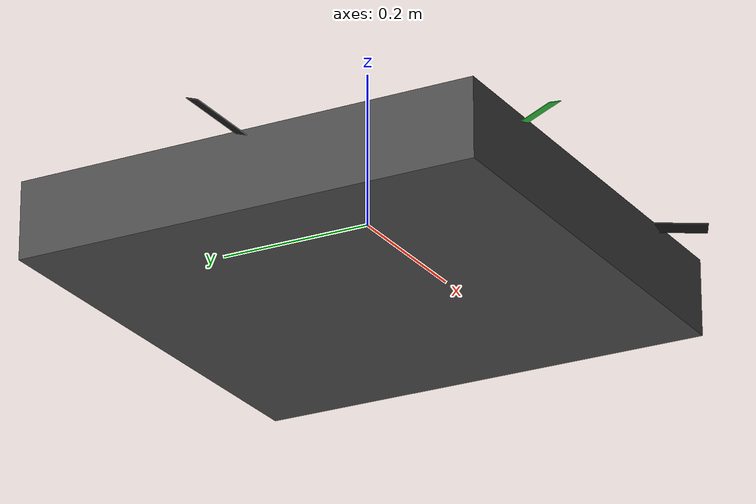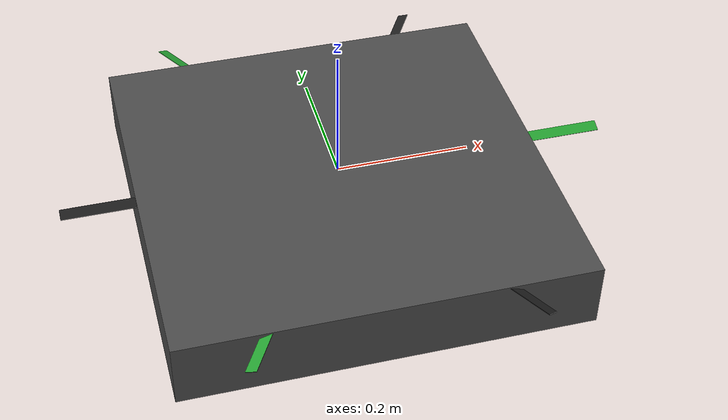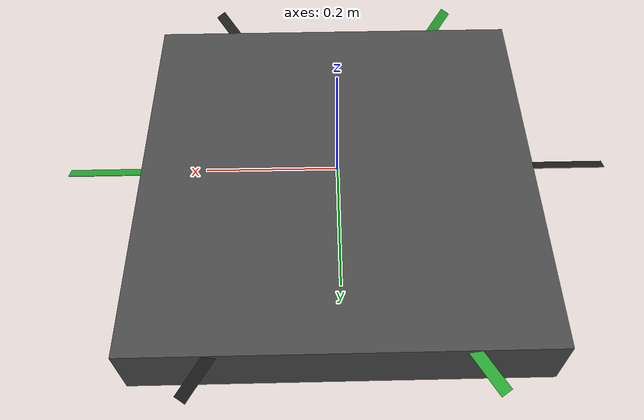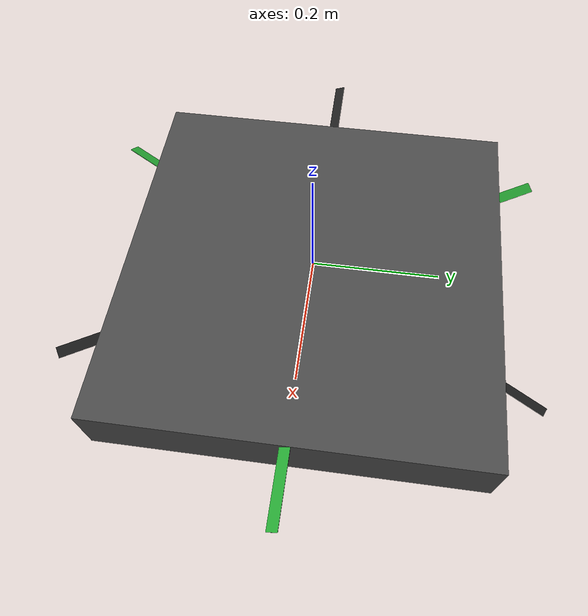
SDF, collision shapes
<?xml version="1.0" encoding="UTF-8"?>
<sdf version='1.9'>
  <model name='fah_hexa'>
    <pose>0 0 0 0 0 0</pose>
    <self_collide>false</self_collide>
    <static>false</static>
    <link name="base_link">
      <inertial>
        <mass>2.2</mass>
        <inertia>
          <ixx>0.0411</ixx>
          <ixy>0</ixy>
          <ixz>0</ixz>
          <iyy>0.0478</iyy>
          <iyz>0</iyz>
          <izz>0.0599</izz>
        </inertia>
      </inertial>
      <gravity>true</gravity>
      <velocity_decay/>

      <!-- Mock visuals for now -->
      <visual name="base_link_visual">
        <pose>0 0 -0.05 0 0 0</pose>
        <geometry>
          <mesh>
            <scale>0.1 0.1 0.1</scale>
            <uri>model://fah_hexa/meshes/hexa_decimated.stl</uri>
          </mesh>
        </geometry>
	<material>
	  <script>
	    <name>Gazebo/DarkGrey</name>
	    <uri>file://media/materials/scripts/gazebo.material</uri>
	  </script>
	</material>
      </visual>

      <collision name="base_link_collision_0">
        <pose>0 0 -.045 0 0 0</pose>
        <geometry>
          <box>
            <size>0.6 0.6 0.1</size>
          </box>
        </geometry>
        <surface>
          <contact>
            <ode>
              <min_depth>0.001</min_depth>
              <max_vel>0</max_vel>
            </ode>
          </contact>
          <friction>
            <ode/>
          </friction>
        </surface>
      </collision>

      <sensor name="air_pressure_sensor" type="air_pressure">
        <always_on>1</always_on>
        <update_rate>50</update_rate>
        <air_pressure>
          <pressure>
            <noise type="gaussian">
              <mean>0</mean>
              <stddev>0.01</stddev>
            </noise>
          </pressure>
        </air_pressure>
      </sensor>
      <sensor name="imu_sensor" type="imu">
        <always_on>1</always_on>
        <update_rate>250</update_rate>
        <imu>
          <angular_velocity>
            <x>
              <noise type="gaussian">
                <mean>0</mean>
                <stddev>0.00018665</stddev>
                <dynamic_bias_stddev>3.8785e-05</dynamic_bias_stddev>
                <dynamic_bias_correlation_time>1000</dynamic_bias_correlation_time>
              </noise>
            </x>
            <y>
              <noise type="gaussian">
                <mean>0</mean>
                <stddev>0.00018665</stddev>
                <dynamic_bias_stddev>3.8785e-05</dynamic_bias_stddev>
                <dynamic_bias_correlation_time>1000</dynamic_bias_correlation_time>
              </noise>
            </y>
            <z>
              <noise type="gaussian">
                <mean>0</mean>
                <stddev>0.00018665</stddev>
                <dynamic_bias_stddev>3.8785e-05</dynamic_bias_stddev>
                <dynamic_bias_correlation_time>1000</dynamic_bias_correlation_time>
              </noise>
            </z>
          </angular_velocity>
          <linear_acceleration>
            <x>
              <noise type="gaussian">
                <mean>0</mean>
                <stddev>0.00186</stddev>
                <dynamic_bias_stddev>0.006</dynamic_bias_stddev>
                <dynamic_bias_correlation_time>300</dynamic_bias_correlation_time>
              </noise>
            </x>
            <y>
              <noise type="gaussian">
                <mean>0</mean>
                <stddev>0.00186</stddev>
                <dynamic_bias_stddev>0.006</dynamic_bias_stddev>
                <dynamic_bias_correlation_time>300</dynamic_bias_correlation_time>
              </noise>
            </y>
            <z>
              <noise type="gaussian">
                <mean>0</mean>
                <stddev>0.00186</stddev>
                <dynamic_bias_stddev>0.006</dynamic_bias_stddev>
                <dynamic_bias_correlation_time>300</dynamic_bias_correlation_time>
              </noise>
            </z>
          </linear_acceleration>
        </imu>
      </sensor>
      <sensor name="navsat_sensor" type="navsat">
        <always_on>1</always_on>
        <update_rate>30</update_rate>
      </sensor>
    </link>

    <link name="rotor_0">
      <gravity>true</gravity>
      <self_collide>false</self_collide>
      <velocity_decay/>
      <pose rotation_format="quat_xyzw">0.27 0 0 0.1736482 0 0 0.9848078</pose>
      <inertial>
	  <!-- unchanged masses for lack of better data -->
          <mass>0.016076923076923075</mass>
          <inertia>
            <ixx>3.8464910483993325e-07</ixx>
            <iyy>2.6115851691700804e-05</iyy>
            <izz>2.649858234714004e-05</izz>
          </inertia>
        </inertial>
      <visual name="rotor_0_visual">
        <pose>-0.022 -0.14638461538461536 -0.016 0 0 0</pose>
        <geometry>
          <mesh>
            <scale>0.8461538461538461 0.8461538461538461 0.8461538461538461</scale>
            <uri>model://fah_hexa/meshes/1345_prop_ccw.stl</uri>
          </mesh>
        </geometry>
        <material>
          <script>
            <name>Gazebo/Green</name>
            <uri>file://media/materials/scripts/gazebo.material</uri>
          </script>
        </material>
      </visual>
      <visual name="rotor_0_visual_motor_bell">
        <pose>0 0 -.032 0 0 0</pose>
        <geometry>
          <mesh>
            <scale>0.75 0.75 0.75</scale>
            <uri>model://fah_hexa/meshes/5010Bell.dae</uri>
          </mesh>
        </geometry>
      </visual>
      <collision name="rotor_0_collision">
        <pose>0 0 0 0 0 0 </pose>
        <geometry>
          <box>
            <size>0.2792307692307692 0.016923076923076923 0.0008461538461538462</size>
          </box>
        </geometry>
        <surface>
          <contact>
            <ode>
              <min_depth>0.001</min_depth>
              <max_vel>0</max_vel>
            </ode>
          </contact>
          <friction>
            <ode/>
          </friction>
        </surface>
      </collision>
    </link>
    <joint name="rotor_0_joint" type="revolute">
      <parent>base_link</parent>
      <child>rotor_0</child>
      <axis>
        <xyz>0 0 1</xyz>
        <limit>
          <lower>-1e+16</lower>
          <upper>1e+16</upper>
        </limit>
        <dynamics>
          <spring_reference>0</spring_reference>
          <spring_stiffness>0</spring_stiffness>
        </dynamics>
      </axis>
    </joint>

    <link name="rotor_1">
      <gravity>true</gravity>
      <self_collide>false</self_collide>
      <velocity_decay/>
      <pose rotation_format="quat_xyzw">0.135 0.2338 0 -0.15038375186428 -0.0868241 0.4924039 0.8528685689181199</pose>
      <inertial>
          <mass>0.016076923076923075</mass>
          <inertia>
            <ixx>3.8464910483993325e-07</ixx>
            <iyy>2.6115851691700804e-05</iyy>
            <izz>2.649858234714004e-05</izz>
          </inertia>
        </inertial>
      <visual name="rotor_1_visual">
        <pose>-0.022 -0.14638461538461536 -0.016 0 0 0</pose>
        <geometry>
          <mesh>
            <scale>0.8461538461538461 0.8461538461538461 0.8461538461538461</scale>
            <uri>model://fah_hexa/meshes/1345_prop_cw.stl</uri>
          </mesh>
        </geometry>
        <material>
          <script>
            <name>Gazebo/Black</name>
            <uri>file://media/materials/scripts/gazebo.material</uri>
          </script>
        </material>
      </visual>
      <visual name="rotor_1_visual_motor_top">
        <pose>0 0 -.032 0 0 0</pose>
        <geometry>
          <mesh>
            <scale>1 1 1</scale>
            <uri>model://fah_hexa/meshes/5010Bell.dae</uri>
          </mesh>
        </geometry>
      </visual>
      <collision name="rotor_1_collision">
        <pose>0 0 0 0 0 0 </pose>
        <geometry>
          <box>
            <size>0.2792307692307692 0.016923076923076923 0.0008461538461538462</size>
          </box>
        </geometry>
        <surface>
          <contact>
            <ode>
              <min_depth>0.001</min_depth>
              <max_vel>0</max_vel>
            </ode>
          </contact>
          <friction>
            <ode/>
          </friction>
        </surface>
      </collision>
    </link>
    <joint name="rotor_1_joint" type="revolute">
      <parent>base_link</parent>
      <child>rotor_1</child>
      <axis>
        <xyz>0 0 1</xyz>
        <limit>
          <lower>-1e+16</lower>
          <upper>1e+16</upper>
        </limit>
        <dynamics>
          <spring_reference>0</spring_reference>
          <spring_stiffness>0</spring_stiffness>
        </dynamics>
      </axis>
    </joint>

    <link name="rotor_2">
      <gravity>true</gravity>
      <self_collide>false</self_collide>
      <velocity_decay/>
      <pose rotation_format="quat_xyzw">-0.135 0.2338 0 0.08682409886176382, 0.15038375186428, 0.8528685689181199, 0.49240389354474234</pose>
      <inertial>
          <mass>0.016076923076923075</mass>
          <inertia>
            <ixx>3.8464910483993325e-07</ixx>
            <iyy>2.6115851691700804e-05</iyy>
            <izz>2.649858234714004e-05</izz>
          </inertia>
        </inertial>
      <visual name="rotor_2_visual">
        <pose>-0.022 -0.14638461538461536 -0.016 0 0 0</pose>
        <geometry>
          <mesh>
            <scale>0.8461538461538461 0.8461538461538461 0.8461538461538461</scale>
            <uri>model://fah_hexa/meshes/1345_prop_ccw.stl</uri>
          </mesh>
        </geometry>
        <material>
          <script>
            <name>Gazebo/Green</name>
            <uri>file://media/materials/scripts/gazebo.material</uri>
          </script>
        </material>
      </visual>
      <visual name="rotor_2_visual_motor_top">
        <pose>0 0 -.032 0 0 0</pose>
        <geometry>
          <mesh>
            <scale>1 1 1</scale>
            <uri>model://fah_hexa/meshes/5010Bell.dae</uri>
          </mesh>
        </geometry>
      </visual>
      <collision name="rotor_2_collision">
        <pose>0 0 0 0 0 0 </pose>
        <geometry>
          <box>
            <size>0.2792307692307692 0.016923076923076923 0.0008461538461538462</size>
          </box>
        </geometry>
        <surface>
          <contact>
            <ode>
              <min_depth>0.001</min_depth>
              <max_vel>0</max_vel>
            </ode>
          </contact>
          <friction>
            <ode/>
          </friction>
        </surface>
      </collision>
    </link>
    <joint name="rotor_2_joint" type="revolute">
      <parent>base_link</parent>
      <child>rotor_2</child>
      <axis>
        <xyz>0 0 1</xyz>
        <limit>
          <lower>-1e+16</lower>
          <upper>1e+16</upper>
        </limit>
        <dynamics>
          <spring_reference>0</spring_reference>
          <spring_stiffness>0</spring_stiffness>
        </dynamics>
      </axis>
    </joint>

    <link name="rotor_3">
      <gravity>true</gravity>
      <self_collide>false</self_collide>
      <velocity_decay/>
      <pose rotation_format="quat_xyzw">-0.27 0 0 0 -0.1736482 0.9848078 0</pose>
      <inertial>
          <mass>0.016076923076923075</mass>
          <inertia>
            <ixx>3.8464910483993325e-07</ixx>
            <iyy>2.6115851691700804e-05</iyy>
            <izz>2.649858234714004e-05</izz>
          </inertia>
        </inertial>
      <visual name="rotor_3_visual">
        <pose>-0.022 -0.14638461538461536 -0.016 0 0 0</pose>
        <geometry>
          <mesh>
            <scale>0.8461538461538461 0.8461538461538461 0.8461538461538461</scale>
            <uri>model://fah_hexa/meshes/1345_prop_cw.stl</uri>
          </mesh>
        </geometry>
        <material>
          <script>
            <name>Gazebo/Black</name>
            <uri>file://media/materials/scripts/gazebo.material</uri>
          </script>
        </material>
      </visual>
      <visual name="rotor_3_visual_motor_top">
        <pose>0 0 -.032 0 0 0</pose>
        <geometry>
          <mesh>
            <scale>1 1 1</scale>
            <uri>model://fah_hexa/meshes/5010Bell.dae</uri>
          </mesh>
        </geometry>
      </visual>
      <collision name="rotor_3_collision">
        <pose>0 0 0 0 0 0 </pose>
        <geometry>
          <box>
            <size>0.2792307692307692 0.016923076923076923 0.0008461538461538462</size>
          </box>
        </geometry>
        <surface>
          <contact>
            <ode>
              <min_depth>0.001</min_depth>
              <max_vel>0</max_vel>
            </ode>
          </contact>
          <friction>
            <ode/>
          </friction>
        </surface>
      </collision>
    </link>
    <joint name="rotor_3_joint" type="revolute">
      <parent>base_link</parent>
      <child>rotor_3</child>
      <axis>
        <xyz>0 0 1</xyz>
        <limit>
          <lower>-1e+16</lower>
          <upper>1e+16</upper>
        </limit>
        <dynamics>
          <spring_reference>0</spring_reference>
          <spring_stiffness>0</spring_stiffness>
        </dynamics>
      </axis>
    </joint>

    <link name="rotor_4">
      <gravity>true</gravity>
      <self_collide>false</self_collide>
      <velocity_decay/>
      <pose rotation_format="quat_xyzw">-0.135 -0.2338 0 -0.15038375186428 -0.0868241 0.4924039 0.8528685689181199</pose>
      <inertial>
          <mass>0.016076923076923075</mass>
          <inertia>
            <ixx>3.8464910483993325e-07</ixx>
            <iyy>2.6115851691700804e-05</iyy>
            <izz>2.649858234714004e-05</izz>
          </inertia>
        </inertial>
      <visual name="rotor_4_visual">
        <pose>-0.022 -0.14638461538461536 -0.016 0 0 0</pose>
        <geometry>
          <mesh>
            <scale>0.8461538461538461 0.8461538461538461 0.8461538461538461</scale>
            <uri>model://fah_hexa/meshes/1345_prop_ccw.stl</uri>
          </mesh>
        </geometry>
        <material>
          <script>
            <name>Gazebo/Green</name>
            <uri>file://media/materials/scripts/gazebo.material</uri>
          </script>
        </material>
      </visual>
      <visual name="rotor_4_visual_motor_top">
        <pose>0 0 -.032 0 0 0</pose>
        <geometry>
          <mesh>
            <scale>1 1 1</scale>
            <uri>model://fah_hexa/meshes/5010Bell.dae</uri>
          </mesh>
        </geometry>
      </visual>
      <collision name="rotor_4_collision">
        <pose>0 0 0 0 0 0 </pose>
        <geometry>
          <box>
            <size>0.2792307692307692 0.016923076923076923 0.0008461538461538462</size>
          </box>
        </geometry>
        <surface>
          <contact>
            <ode>
              <min_depth>0.001</min_depth>
              <max_vel>0</max_vel>
            </ode>
          </contact>
          <friction>
            <ode/>
          </friction>
        </surface>
      </collision>
    </link>
    <joint name="rotor_4_joint" type="revolute">
      <parent>base_link</parent>
      <child>rotor_4</child>
      <axis>
        <xyz>0 0 1</xyz>
        <limit>
          <lower>-1e+16</lower>
          <upper>1e+16</upper>
        </limit>
        <dynamics>
          <spring_reference>0</spring_reference>
          <spring_stiffness>0</spring_stiffness>
        </dynamics>
      </axis>
    </joint>

    <link name="rotor_5">
      <gravity>true</gravity>
      <self_collide>false</self_collide>
      <velocity_decay/>
      <pose rotation_format="quat_xyzw">0.135 -0.2338 0 0.08682409886176382, 0.15038375186428, 0.8528685689181199, 0.49240389354474234</pose>
      <inertial>
          <mass>0.016076923076923075</mass>
          <inertia>
            <ixx>3.8464910483993325e-07</ixx>
            <iyy>2.6115851691700804e-05</iyy>
            <izz>2.649858234714004e-05</izz>
          </inertia>
        </inertial>
      <visual name="rotor_5_visual">
        <pose>-0.022 -0.14638461538461536 -0.016 0 0 0</pose>
        <geometry>
          <mesh>
            <scale>0.8461538461538461 0.8461538461538461 0.8461538461538461</scale>
            <uri>model://fah_hexa/meshes/1345_prop_cw.stl</uri>
          </mesh>
        </geometry>
        <material>
          <script>
            <name>Gazebo/Black</name>
            <uri>file://media/materials/scripts/gazebo.material</uri>
          </script>
        </material>
      </visual>
      <visual name="rotor_5_visual_motor_top">
        <pose>0 0 -.032 0 0 0</pose>
        <geometry>
          <mesh>
            <scale>1 1 1</scale>
            <uri>model://fah_hexa/meshes/5010Bell.dae</uri>
          </mesh>
        </geometry>
      </visual>
      <collision name="rotor_5_collision">
        <pose>0 0 0 0 0 0 </pose>
        <geometry>
          <box>
            <size>0.2792307692307692 0.016923076923076923 0.0008461538461538462</size>
          </box>
        </geometry>
        <surface>
          <contact>
            <ode>
              <min_depth>0.001</min_depth>
              <max_vel>0</max_vel>
            </ode>
          </contact>
          <friction>
            <ode/>
          </friction>
        </surface>
      </collision>
    </link>
    <joint name="rotor_5_joint" type="revolute">
      <parent>base_link</parent>
      <child>rotor_5</child>
      <axis>
        <xyz>0 0 1</xyz>
        <limit>
          <lower>-1e+16</lower>
          <upper>1e+16</upper>
        </limit>
        <dynamics>
          <spring_reference>0</spring_reference>
          <spring_stiffness>0</spring_stiffness>
        </dynamics>
      </axis>
    </joint>

    <plugin filename="gz-sim-multicopter-motor-model-system" name="gz::sim::systems::MulticopterMotorModel">
      <jointName>rotor_0_joint</jointName>
      <linkName>rotor_0</linkName>
      <turningDirection>ccw</turningDirection>
      <timeConstantUp>0.0125</timeConstantUp>
      <timeConstantDown>0.025</timeConstantDown>
      <maxRotVelocity>1000.0</maxRotVelocity>
      <motorConstant>8.54858e-06</motorConstant>
      <momentConstant>0.016</momentConstant>
      <commandSubTopic>command/motor_speed</commandSubTopic>
      <motorNumber>0</motorNumber>
      <rotorDragCoefficient>8.06428e-05</rotorDragCoefficient>
      <rollingMomentCoefficient>1e-06</rollingMomentCoefficient>
      <rotorVelocitySlowdownSim>10</rotorVelocitySlowdownSim>
      <motorType>velocity</motorType>
    </plugin>
    <plugin filename="gz-sim-multicopter-motor-model-system" name="gz::sim::systems::MulticopterMotorModel">
      <jointName>rotor_1_joint</jointName>
      <linkName>rotor_1</linkName>
      <turningDirection>cw</turningDirection>
      <timeConstantUp>0.0125</timeConstantUp>
      <timeConstantDown>0.025</timeConstantDown>
      <maxRotVelocity>1000.0</maxRotVelocity>
      <motorConstant>8.54858e-06</motorConstant>
      <momentConstant>0.016</momentConstant>
      <commandSubTopic>command/motor_speed</commandSubTopic>
      <motorNumber>1</motorNumber>
      <rotorDragCoefficient>8.06428e-05</rotorDragCoefficient>
      <rollingMomentCoefficient>1e-06</rollingMomentCoefficient>
      <rotorVelocitySlowdownSim>10</rotorVelocitySlowdownSim>
      <motorType>velocity</motorType>
    </plugin>
    <plugin filename="gz-sim-multicopter-motor-model-system" name="gz::sim::systems::MulticopterMotorModel">
      <jointName>rotor_2_joint</jointName>
      <linkName>rotor_2</linkName>
      <turningDirection>ccw</turningDirection>
      <timeConstantUp>0.0125</timeConstantUp>
      <timeConstantDown>0.025</timeConstantDown>
      <maxRotVelocity>1000.0</maxRotVelocity>
      <motorConstant>8.54858e-06</motorConstant>
      <momentConstant>0.016</momentConstant>
      <commandSubTopic>command/motor_speed</commandSubTopic>
      <motorNumber>2</motorNumber>
      <rotorDragCoefficient>8.06428e-05</rotorDragCoefficient>
      <rollingMomentCoefficient>1e-06</rollingMomentCoefficient>
      <rotorVelocitySlowdownSim>10</rotorVelocitySlowdownSim>
      <motorType>velocity</motorType>
    </plugin>
    <plugin filename="gz-sim-multicopter-motor-model-system" name="gz::sim::systems::MulticopterMotorModel">
      <jointName>rotor_3_joint</jointName>
      <linkName>rotor_3</linkName>
      <turningDirection>cw</turningDirection>
      <timeConstantUp>0.0125</timeConstantUp>
      <timeConstantDown>0.025</timeConstantDown>
      <maxRotVelocity>1000.0</maxRotVelocity>
      <motorConstant>8.54858e-06</motorConstant>
      <momentConstant>0.016</momentConstant>
      <commandSubTopic>command/motor_speed</commandSubTopic>
      <motorNumber>3</motorNumber>
      <rotorDragCoefficient>8.06428e-05</rotorDragCoefficient>
      <rollingMomentCoefficient>1e-06</rollingMomentCoefficient>
      <rotorVelocitySlowdownSim>10</rotorVelocitySlowdownSim>
      <motorType>velocity</motorType>
    </plugin>
    <plugin filename="gz-sim-multicopter-motor-model-system" name="gz::sim::systems::MulticopterMotorModel">
      <jointName>rotor_4_joint</jointName>
      <linkName>rotor_4</linkName>
      <turningDirection>ccw</turningDirection>
      <timeConstantUp>0.0125</timeConstantUp>
      <timeConstantDown>0.025</timeConstantDown>
      <maxRotVelocity>1000.0</maxRotVelocity>
      <motorConstant>8.54858e-06</motorConstant>
      <momentConstant>0.016</momentConstant>
      <commandSubTopic>command/motor_speed</commandSubTopic>
      <motorNumber>4</motorNumber>
      <rotorDragCoefficient>8.06428e-05</rotorDragCoefficient>
      <rollingMomentCoefficient>1e-06</rollingMomentCoefficient>
      <rotorVelocitySlowdownSim>10</rotorVelocitySlowdownSim>
      <motorType>velocity</motorType>
    </plugin>
    <plugin filename="gz-sim-multicopter-motor-model-system" name="gz::sim::systems::MulticopterMotorModel">
      <jointName>rotor_5_joint</jointName>
      <linkName>rotor_5</linkName>
      <turningDirection>cw</turningDirection>
      <timeConstantUp>0.0125</timeConstantUp>
      <timeConstantDown>0.025</timeConstantDown>
      <maxRotVelocity>1000.0</maxRotVelocity>
      <motorConstant>8.54858e-06</motorConstant>
      <momentConstant>0.016</momentConstant>
      <commandSubTopic>command/motor_speed</commandSubTopic>
      <motorNumber>5</motorNumber>
      <rotorDragCoefficient>8.06428e-05</rotorDragCoefficient>
      <rollingMomentCoefficient>1e-06</rollingMomentCoefficient>
      <rotorVelocitySlowdownSim>10</rotorVelocitySlowdownSim>
      <motorType>velocity</motorType>
    </plugin>
    <plugin filename="gz-sim-odometry-publisher-system" name="gz::sim::systems::OdometryPublisher">
      <dimensions>3</dimensions>
      <odom_frame>world</odom_frame>
    </plugin>

  </model>
</sdf>
